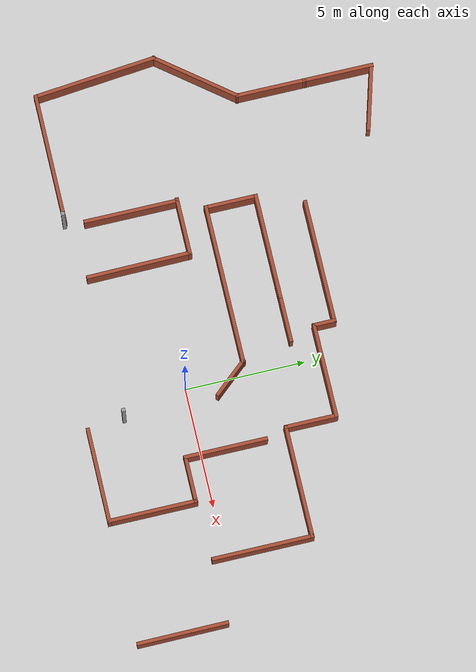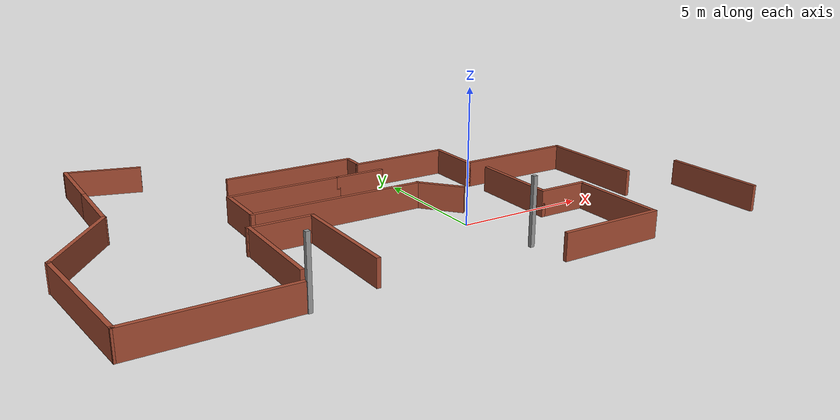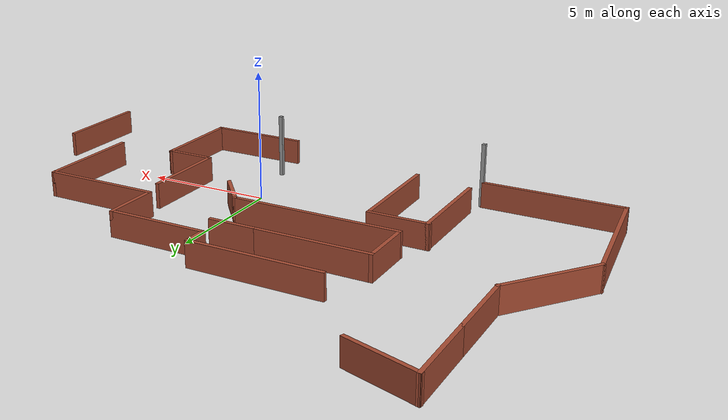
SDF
<?xml version='1.0'?>
<sdf version='1.7'>
  <model name='maze_wall'>
    <pose>-1.93896 3.14287 0 0 -0 0</pose>
    <link name='Wall_12'>
      <collision name='Wall_12_Collision'>
        <geometry>
          <box>
            <size>0.15 0.15 2.5</size>
          </box>
        </geometry>
        <pose>0 0 1.25 0 -0 0</pose>
      </collision>
      <visual name='Wall_12_Visual'>
        <pose>0 0 1.25 0 -0 0</pose>
        <geometry>
          <box>
            <size>0.15 0.15 2.5</size>
          </box>
        </geometry>
        <material>
          <script>
            <uri>file://media/materials/scripts/gazebo.material</uri>
            <name>Gazebo/Grey</name>
          </script>
          <ambient>1 1 1 1</ambient>
        </material>
        <meta>
          <layer>0</layer>
        </meta>
      </visual>
      <pose>-5.84642 -6.44279 0 0 -0 0</pose>
    </link>
    <link name='Wall_40'>
      <collision name='Wall_40_Collision'>
        <geometry>
          <box>
            <size>4.01176 0.15 1</size>
          </box>
        </geometry>
        <pose>0 0 0.5 0 -0 0</pose>
      </collision>
      <visual name='Wall_40_Visual'>
        <pose>0 0 0.5 0 -0 0</pose>
        <geometry>
          <box>
            <size>4.01176 0.15 1</size>
          </box>
        </geometry>
        <material>
          <script>
            <uri>file://media/materials/scripts/gazebo.material</uri>
            <name>Gazebo/Bricks</name>
          </script>
          <ambient>0.996078 0.47451 0.0196078 1</ambient>
        </material>
        <meta>
          <layer>0</layer>
        </meta>
      </visual>
      <pose>-5.66504 -3.64699 0 0 -0 1.5708</pose>
    </link>
    <link name='Wall_41'>
      <collision name='Wall_41_Collision'>
        <geometry>
          <box>
            <size>2.45479 0.15 1</size>
          </box>
        </geometry>
        <pose>0 0 0.5 0 -0 0</pose>
      </collision>
      <visual name='Wall_41_Visual'>
        <pose>0 0 0.5 0 -0 0</pose>
        <geometry>
          <box>
            <size>2.45479 0.15 1</size>
          </box>
        </geometry>
        <material>
          <script>
            <uri>file://media/materials/scripts/gazebo.material</uri>
            <name>Gazebo/Bricks</name>
          </script>
          <ambient>0.996078 0.47451 0.0196078 1</ambient>
        </material>
        <meta>
          <layer>0</layer>
        </meta>
      </visual>
      <pose>-4.55916 -1.71611 0 0 -0 0</pose>
    </link>
    <link name='Wall_42'>
      <collision name='Wall_42_Collision'>
        <geometry>
          <box>
            <size>4.35564 0.15 1</size>
          </box>
        </geometry>
        <pose>0 0 0.5 0 -0 0</pose>
      </collision>
      <visual name='Wall_42_Visual'>
        <pose>0 0 0.5 0 -0 0</pose>
        <geometry>
          <box>
            <size>4.35564 0.15 1</size>
          </box>
        </geometry>
        <material>
          <script>
            <uri>file://media/materials/scripts/gazebo.material</uri>
            <name>Gazebo/Bricks</name>
          </script>
          <ambient>0.996078 0.47451 0.0196078 1</ambient>
        </material>
        <meta>
          <layer>0</layer>
        </meta>
      </visual>
      <pose>-3.3835 -3.88956 0 0 -0 -1.55973</pose>
    </link>
    <link name='Wall_51'>
      <collision name='Wall_51_Collision'>
        <geometry>
          <box>
            <size>0.15 0.15 2.5</size>
          </box>
        </geometry>
        <pose>0 0 1.25 0 -0 0</pose>
      </collision>
      <visual name='Wall_51_Visual'>
        <pose>0 0 1.25 0 -0 0</pose>
        <geometry>
          <box>
            <size>0.15 0.15 2.5</size>
          </box>
        </geometry>
        <material>
          <script>
            <uri>file://media/materials/scripts/gazebo.material</uri>
            <name>Gazebo/Grey</name>
          </script>
          <ambient>1 1 1 1</ambient>
        </material>
        <meta>
          <layer>0</layer>
        </meta>
      </visual>
      <pose>2.64406 -5.87469 0 0 -0 0</pose>
    </link>
    <link name='Wall_53'>
      <collision name='Wall_53_Collision'>
        <geometry>
          <box>
            <size>5.25 0.15 1</size>
          </box>
        </geometry>
        <pose>0 0 0.5 0 -0 0</pose>
      </collision>
      <visual name='Wall_53_Visual'>
        <pose>0 0 0.5 0 -0 0</pose>
        <geometry>
          <box>
            <size>5.25 0.15 1</size>
          </box>
        </geometry>
        <material>
          <script>
            <uri>file://media/materials/scripts/gazebo.material</uri>
            <name>Gazebo/Bricks</name>
          </script>
          <ambient>0.996078 0.47451 0.0196078 1</ambient>
        </material>
        <meta>
          <layer>0</layer>
        </meta>
      </visual>
      <pose>-1.85004 3.38813 0 0 -0 0</pose>
    </link>
    <link name='Wall_54'>
      <collision name='Wall_54_Collision'>
        <geometry>
          <box>
            <size>1 0.15 1</size>
          </box>
        </geometry>
        <pose>0 0 0.5 0 -0 0</pose>
      </collision>
      <visual name='Wall_54_Visual'>
        <pose>0 0 0.5 0 -0 0</pose>
        <geometry>
          <box>
            <size>1 0.15 1</size>
          </box>
        </geometry>
        <material>
          <script>
            <uri>file://media/materials/scripts/gazebo.material</uri>
            <name>Gazebo/Bricks</name>
          </script>
          <ambient>0.996078 0.47451 0.0196078 1</ambient>
        </material>
        <meta>
          <layer>0</layer>
        </meta>
      </visual>
      <pose>0.699962 2.96313 0 0 -0 -1.5708</pose>
    </link>
    <link name='Wall_55'>
      <collision name='Wall_55_Collision'>
        <geometry>
          <box>
            <size>4 0.15 1</size>
          </box>
        </geometry>
        <pose>0 0 0.5 0 -0 0</pose>
      </collision>
      <visual name='Wall_55_Visual'>
        <pose>0 0 0.5 0 -0 0</pose>
        <geometry>
          <box>
            <size>4 0.15 1</size>
          </box>
        </geometry>
        <material>
          <script>
            <uri>file://media/materials/scripts/gazebo.material</uri>
            <name>Gazebo/Bricks</name>
          </script>
          <ambient>0.996078 0.47451 0.0196078 1</ambient>
        </material>
        <meta>
          <layer>0</layer>
        </meta>
      </visual>
      <pose>2.62496 2.53813 0 0 -0 0</pose>
    </link>
    <link name='Wall_56'>
      <collision name='Wall_56_Collision'>
        <geometry>
          <box>
            <size>2.25 0.15 1</size>
          </box>
        </geometry>
        <pose>0 0 0.5 0 -0 0</pose>
      </collision>
      <visual name='Wall_56_Visual'>
        <pose>0 0 0.5 0 -0 0</pose>
        <geometry>
          <box>
            <size>2.25 0.15 1</size>
          </box>
        </geometry>
        <material>
          <script>
            <uri>file://media/materials/scripts/gazebo.material</uri>
            <name>Gazebo/Bricks</name>
          </script>
          <ambient>0.996078 0.47451 0.0196078 1</ambient>
        </material>
        <meta>
          <layer>0</layer>
        </meta>
      </visual>
      <pose>4.54996 1.48813 0 0 -0 -1.5708</pose>
    </link>
    <link name='Wall_63'>
      <collision name='Wall_63_Collision'>
        <geometry>
          <box>
            <size>1.86633 0.15 1</size>
          </box>
        </geometry>
        <pose>0 0 0.5 0 -0 0</pose>
      </collision>
      <visual name='Wall_63_Visual'>
        <pose>0 0 0.5 0 -0 0</pose>
        <geometry>
          <box>
            <size>1.86633 0.15 1</size>
          </box>
        </geometry>
        <material>
          <script>
            <uri>file://media/materials/scripts/gazebo.material</uri>
            <name>Gazebo/Bricks</name>
          </script>
          <ambient>0.996078 0.47451 0.0196078 1</ambient>
        </material>
        <meta>
          <layer>0</layer>
        </meta>
      </visual>
      <pose>2.03925 -1.27961 0 0 -0 2.27912</pose>
    </link>
    <link name='Wall_64'>
      <collision name='Wall_64_Collision'>
        <geometry>
          <box>
            <size>6.75 0.15 1</size>
          </box>
        </geometry>
        <pose>0 0 0.5 0 -0 0</pose>
      </collision>
      <visual name='Wall_64_Visual'>
        <pose>0 0 0.5 0 -0 0</pose>
        <geometry>
          <box>
            <size>6.75 0.15 1</size>
          </box>
        </geometry>
        <material>
          <script>
            <uri>file://media/materials/scripts/gazebo.material</uri>
            <name>Gazebo/Bricks</name>
          </script>
          <ambient>0.996078 0.47451 0.0196078 1</ambient>
        </material>
        <meta>
          <layer>0</layer>
        </meta>
      </visual>
      <pose>-1.81904 -0.627869 0 0 -0 3.14159</pose>
    </link>
    <link name='Wall_65'>
      <collision name='Wall_65_Collision'>
        <geometry>
          <box>
            <size>2.25052 0.15 1</size>
          </box>
        </geometry>
        <pose>0 0 0.5 0 -0 0</pose>
      </collision>
      <visual name='Wall_65_Visual'>
        <pose>0 0 0.5 0 -0 0</pose>
        <geometry>
          <box>
            <size>2.25052 0.15 1</size>
          </box>
        </geometry>
        <material>
          <script>
            <uri>file://media/materials/scripts/gazebo.material</uri>
            <name>Gazebo/Bricks</name>
          </script>
          <ambient>0.996078 0.47451 0.0196078 1</ambient>
        </material>
        <meta>
          <layer>0</layer>
        </meta>
      </visual>
      <pose>-5.11904 0.422131 0 0 -0 1.5708</pose>
    </link>
    <link name='Wall_66'>
      <collision name='Wall_66_Collision'>
        <geometry>
          <box>
            <size>4.5 0.15 1</size>
          </box>
        </geometry>
        <pose>0 0 0.5 0 -0 0</pose>
      </collision>
      <visual name='Wall_66_Visual'>
        <pose>0 0 0.5 0 -0 0</pose>
        <geometry>
          <box>
            <size>4.5 0.15 1</size>
          </box>
        </geometry>
        <material>
          <script>
            <uri>file://media/materials/scripts/gazebo.material</uri>
            <name>Gazebo/Bricks</name>
          </script>
          <ambient>0.996078 0.47451 0.0196078 1</ambient>
        </material>
        <meta>
          <layer>0</layer>
        </meta>
      </visual>
      <pose>-2.94404 1.47213 0 0 -0 0</pose>
    </link>
    <link name='Wall_67'>
      <collision name='Wall_67_Collision'>
        <geometry>
          <box>
            <size>2 0.15 1</size>
          </box>
        </geometry>
        <pose>0 0 0.5 0 -0 0</pose>
      </collision>
      <visual name='Wall_67_Visual'>
        <pose>0 0 0.5 0 -0 0</pose>
        <geometry>
          <box>
            <size>2 0.15 1</size>
          </box>
        </geometry>
        <material>
          <script>
            <uri>file://media/materials/scripts/gazebo.material</uri>
            <name>Gazebo/Bricks</name>
          </script>
          <ambient>0.996078 0.47451 0.0196078 1</ambient>
        </material>
        <meta>
          <layer>0</layer>
        </meta>
      </visual>
      <pose>0.155962 1.47213 0 0 -0 0</pose>
    </link>
    <link name='Wall_69'>
      <collision name='Wall_69_Collision'>
        <geometry>
          <box>
            <size>4.75 0.15 1</size>
          </box>
        </geometry>
        <pose>0 0 0.5 0 -0 0</pose>
      </collision>
      <visual name='Wall_69_Visual'>
        <pose>0 0 0.5 0 -0 0</pose>
        <geometry>
          <box>
            <size>4.75 0.15 1</size>
          </box>
        </geometry>
        <material>
          <script>
            <uri>file://media/materials/scripts/gazebo.material</uri>
            <name>Gazebo/Bricks</name>
          </script>
          <ambient>0.996078 0.47451 0.0196078 1</ambient>
        </material>
        <meta>
          <layer>0</layer>
        </meta>
      </visual>
      <pose>6.84996 0.438131 0 0 -0 0</pose>
    </link>
    <link name='Wall_70'>
      <collision name='Wall_70_Collision'>
        <geometry>
          <box>
            <size>4.25 0.15 1</size>
          </box>
        </geometry>
        <pose>0 0 0.5 0 -0 0</pose>
      </collision>
      <visual name='Wall_70_Visual'>
        <pose>0 0 0.5 0 -0 0</pose>
        <geometry>
          <box>
            <size>4.25 0.15 1</size>
          </box>
        </geometry>
        <material>
          <script>
            <uri>file://media/materials/scripts/gazebo.material</uri>
            <name>Gazebo/Bricks</name>
          </script>
          <ambient>0.996078 0.47451 0.0196078 1</ambient>
        </material>
        <meta>
          <layer>0</layer>
        </meta>
      </visual>
      <pose>9.14996 -1.61187 0 0 -0 -1.5708</pose>
    </link>
    <link name='Wall_72'>
      <collision name='Wall_72_Collision'>
        <geometry>
          <box>
            <size>3.5 0.15 1</size>
          </box>
        </geometry>
        <pose>0 0 0.5 0 -0 0</pose>
      </collision>
      <visual name='Wall_72_Visual'>
        <pose>0 0 0.5 0 -0 0</pose>
        <geometry>
          <box>
            <size>3.5 0.15 1</size>
          </box>
        </geometry>
        <material>
          <script>
            <uri>file://media/materials/scripts/gazebo.material</uri>
            <name>Gazebo/Bricks</name>
          </script>
          <ambient>0.996078 0.47451 0.0196078 1</ambient>
        </material>
        <meta>
          <layer>0</layer>
        </meta>
      </visual>
      <pose>4.82996 -2.14387 0 0 -0 -1.5708</pose>
    </link>
    <link name='Wall_73'>
      <collision name='Wall_73_Collision'>
        <geometry>
          <box>
            <size>2 0.15 1</size>
          </box>
        </geometry>
        <pose>0 0 0.5 0 -0 0</pose>
      </collision>
      <visual name='Wall_73_Visual'>
        <pose>0 0 0.5 0 -0 0</pose>
        <geometry>
          <box>
            <size>2 0.15 1</size>
          </box>
        </geometry>
        <material>
          <script>
            <uri>file://media/materials/scripts/gazebo.material</uri>
            <name>Gazebo/Bricks</name>
          </script>
          <ambient>0.996078 0.47451 0.0196078 1</ambient>
        </material>
        <meta>
          <layer>0</layer>
        </meta>
      </visual>
      <pose>5.75496 -3.81887 0 0 -0 0</pose>
    </link>
    <link name='Wall_74'>
      <collision name='Wall_74_Collision'>
        <geometry>
          <box>
            <size>3.75 0.15 1</size>
          </box>
        </geometry>
        <pose>0 0 0.5 0 -0 0</pose>
      </collision>
      <visual name='Wall_74_Visual'>
        <pose>0 0 0.5 0 -0 0</pose>
        <geometry>
          <box>
            <size>3.75 0.15 1</size>
          </box>
        </geometry>
        <material>
          <script>
            <uri>file://media/materials/scripts/gazebo.material</uri>
            <name>Gazebo/Bricks</name>
          </script>
          <ambient>0.996078 0.47451 0.0196078 1</ambient>
        </material>
        <meta>
          <layer>0</layer>
        </meta>
      </visual>
      <pose>6.67996 -5.61887 0 0 -0 -1.5708</pose>
    </link>
    <link name='Wall_75'>
      <collision name='Wall_75_Collision'>
        <geometry>
          <box>
            <size>4 0.15 1</size>
          </box>
        </geometry>
        <pose>0 0 0.5 0 -0 0</pose>
      </collision>
      <visual name='Wall_75_Visual'>
        <pose>0 0 0.5 0 -0 0</pose>
        <geometry>
          <box>
            <size>4 0.15 1</size>
          </box>
        </geometry>
        <material>
          <script>
            <uri>file://media/materials/scripts/gazebo.material</uri>
            <name>Gazebo/Bricks</name>
          </script>
          <ambient>0.996078 0.47451 0.0196078 1</ambient>
        </material>
        <meta>
          <layer>0</layer>
        </meta>
      </visual>
      <pose>4.75496 -7.41887 0 0 -0 3.14159</pose>
    </link>
    <link name='Wall_78'>
      <collision name='Wall_78_Collision'>
        <geometry>
          <box>
            <size>5.5 0.15 1</size>
          </box>
        </geometry>
        <pose>0 0 0.5 0 -0 0</pose>
      </collision>
      <visual name='Wall_78_Visual'>
        <pose>0 0 0.5 0 -0 0</pose>
        <geometry>
          <box>
            <size>5.5 0.15 1</size>
          </box>
        </geometry>
        <material>
          <script>
            <uri>file://media/materials/scripts/gazebo.material</uri>
            <name>Gazebo/Bricks</name>
          </script>
          <ambient>0.996078 0.47451 0.0196078 1</ambient>
        </material>
        <meta>
          <layer>0</layer>
        </meta>
      </visual>
      <pose>-8.61404 -6.39887 0 0 -0 3.14159</pose>
    </link>
    <link name='Wall_79'>
      <collision name='Wall_79_Collision'>
        <geometry>
          <box>
            <size>5.27445 0.15 1</size>
          </box>
        </geometry>
        <pose>0 0 0.5 0 -0 0</pose>
      </collision>
      <visual name='Wall_79_Visual'>
        <pose>0 0 0.5 0 -0 0</pose>
        <geometry>
          <box>
            <size>5.27445 0.15 1</size>
          </box>
        </geometry>
        <material>
          <script>
            <uri>file://media/materials/scripts/gazebo.material</uri>
            <name>Gazebo/Bricks</name>
          </script>
          <ambient>0.996078 0.47451 0.0196078 1</ambient>
        </material>
        <meta>
          <layer>0</layer>
        </meta>
      </visual>
      <pose>-11.539 -3.84887 0 0 -0 1.66852</pose>
    </link>
    <link name='Wall_80'>
      <collision name='Wall_80_Collision'>
        <geometry>
          <box>
            <size>3.96084 0.15 1</size>
          </box>
        </geometry>
        <pose>0 0 0.5 0 -0 0</pose>
      </collision>
      <visual name='Wall_80_Visual'>
        <pose>0 0 0.5 0 -0 0</pose>
        <geometry>
          <box>
            <size>3.96084 0.15 1</size>
          </box>
        </geometry>
        <material>
          <script>
            <uri>file://media/materials/scripts/gazebo.material</uri>
            <name>Gazebo/Bricks</name>
          </script>
          <ambient>0.996078 0.47451 0.0196078 1</ambient>
        </material>
        <meta>
          <layer>0</layer>
        </meta>
      </visual>
      <pose>-10.614 0.201131 0 0 -0 0.906301</pose>
    </link>
    <link name='Wall_81'>
      <collision name='Wall_81_Collision'>
        <geometry>
          <box>
            <size>3 0.15 1</size>
          </box>
        </geometry>
        <pose>0 0 0.5 0 -0 0</pose>
      </collision>
      <visual name='Wall_81_Visual'>
        <pose>0 0 0.5 0 -0 0</pose>
        <geometry>
          <box>
            <size>3 0.15 1</size>
          </box>
        </geometry>
        <material>
          <script>
            <uri>file://media/materials/scripts/gazebo.material</uri>
            <name>Gazebo/Bricks</name>
          </script>
          <ambient>0.996078 0.47451 0.0196078 1</ambient>
        </material>
        <meta>
          <layer>0</layer>
        </meta>
      </visual>
      <pose>-9.43904 3.12613 0 0 -0 1.5708</pose>
    </link>
    <link name='Wall_82'>
      <collision name='Wall_82_Collision'>
        <geometry>
          <box>
            <size>3 0.15 1</size>
          </box>
        </geometry>
        <pose>0 0 0.5 0 -0 0</pose>
      </collision>
      <visual name='Wall_82_Visual'>
        <pose>0 0 0.5 0 -0 0</pose>
        <geometry>
          <box>
            <size>3 0.15 1</size>
          </box>
        </geometry>
        <material>
          <script>
            <uri>file://media/materials/scripts/gazebo.material</uri>
            <name>Gazebo/Bricks</name>
          </script>
          <ambient>0.996078 0.47451 0.0196078 1</ambient>
        </material>
        <meta>
          <layer>0</layer>
        </meta>
      </visual>
      <pose>-9.43954 5.97613 0 0 -0 1.57115</pose>
    </link>
    <link name='Wall_83'>
      <collision name='Wall_83_Collision'>
        <geometry>
          <box>
            <size>2.85622 0.15 1</size>
          </box>
        </geometry>
        <pose>0 0 0.5 0 -0 0</pose>
      </collision>
      <visual name='Wall_83_Visual'>
        <pose>0 0 0.5 0 -0 0</pose>
        <geometry>
          <box>
            <size>2.85622 0.15 1</size>
          </box>
        </geometry>
        <material>
          <script>
            <uri>file://media/materials/scripts/gazebo.material</uri>
            <name>Gazebo/Bricks</name>
          </script>
          <ambient>0.996078 0.47451 0.0196078 1</ambient>
        </material>
        <meta>
          <layer>0</layer>
        </meta>
      </visual>
      <pose>-8.13954 7.02613 0 0 -0 -0.280735</pose>
    </link>
    <link name='Wall_9'>
      <collision name='Wall_9_Collision'>
        <geometry>
          <box>
            <size>3.80458 0.15 1</size>
          </box>
        </geometry>
        <pose>0 0 0.5 0 -0 0</pose>
      </collision>
      <visual name='Wall_9_Visual'>
        <pose>0 0 0.5 0 -0 0</pose>
        <geometry>
          <box>
            <size>3.80458 0.15 1</size>
          </box>
        </geometry>
        <material>
          <script>
            <uri>file://media/materials/scripts/gazebo.material</uri>
            <name>Gazebo/Bricks</name>
          </script>
          <ambient>0.996078 0.47451 0.0196078 1</ambient>
        </material>
        <meta>
          <layer>0</layer>
        </meta>
      </visual>
      <pose>11.81 -5.56037 0 0 -0 -1.56587</pose>
    </link>
    <static>1</static>
  </model>
</sdf>
